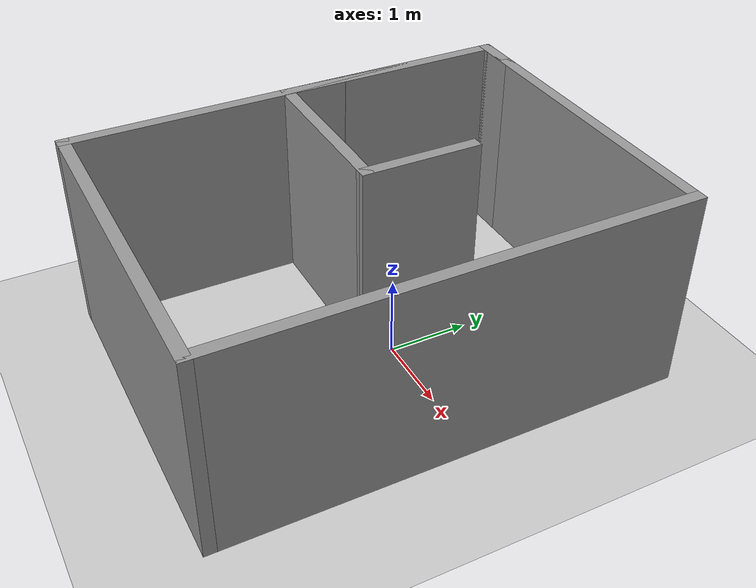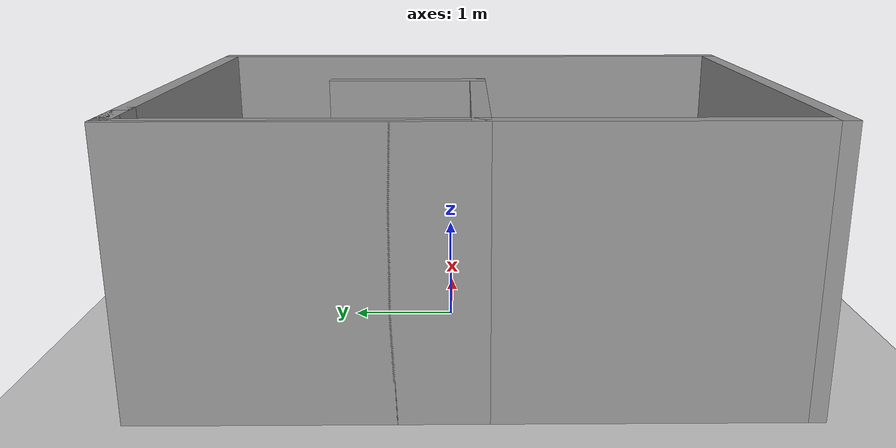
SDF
<sdf version="1.7">
 <world name="default">
  <light name="sun" type="directional">
   <pose>0 0 10 0 -0 0</pose>
   <diffuse>0.8 0.8 0.8 1</diffuse>
   <specular>0.2 0.2 0.2 1</specular>
   <attenuation>
    <range>1000</range>
    <constant>0.9</constant>
    <linear>0.01</linear>
    <quadratic>0.001</quadratic>
   </attenuation>
   <direction>-0.5 0.1 -0.9</direction>
   <spot><inner_angle>0</inner_angle><outer_angle>0</outer_angle><falloff>0</falloff></spot>
  </light>
  <model name="ground_plane">
   <static>1</static>
   <link name="link">
    <collision name="collision">
     <geometry><plane><normal>0 0 1</normal><size>100 100</size></plane></geometry>
     <surface>
      <contact><collide_bitmask>65535</collide_bitmask></contact>
      <friction><ode><mu>100</mu><mu2>50</mu2></ode></friction>
     </surface>
    </collision>
    <visual name="visual">
     <cast_shadows>0</cast_shadows>
     <geometry><plane><normal>0 0 1</normal><size>100 100</size></plane></geometry>
     <material>
      <script><uri>file://media/materials/scripts/gazebo.material</uri><name>Gazebo/Grey</name></script>
     </material>
    </visual>
   </link>
  </model>
  <gravity>0 0 -9.8</gravity>
  <magnetic_field>6e-06 2.3e-05 -4.2e-05</magnetic_field>
  <atmosphere type="adiabatic"/>
  <physics type="ode">
   <max_step_size>0.001</max_step_size>
   <real_time_factor>1</real_time_factor>
   <real_time_update_rate>1000</real_time_update_rate>
  </physics>
  <scene><ambient>0.4 0.4 0.4 1</ambient><background>0.7 0.7 0.7 1</background><shadows>1</shadows></scene>
  <spherical_coordinates>
   <surface_model>EARTH_WGS84</surface_model>
   <latitude_deg>0</latitude_deg>
   <longitude_deg>0</longitude_deg>
   <elevation>0</elevation>
   <heading_deg>0</heading_deg>
  </spherical_coordinates>
  <model name="maze_4">
   <pose>-0.210045 -0.221276 0 0 -0 0</pose>
   <link name="Wall_10">
    <collision name="Wall_10_Collision">
     <geometry><box><size>0.65 0.15 2.5</size></box></geometry>
     <pose>0 0 1.25 0 -0 0</pose>
    </collision>
    <visual name="Wall_10_Visual">
     <pose>0 0 1.25 0 -0 0</pose>
     <geometry><box><size>0.65 0.15 2.5</size></box></geometry>
     <material>
      <script><uri>file://media/materials/scripts/gazebo.material</uri><name>Gazebo/Grey</name></script>
      <ambient>1 1 1 1</ambient>
     </material>
     <meta><layer>0</layer></meta>
    </visual>
    <pose>-1.8 2.8 0 0 -0 3.14159</pose>
   </link>
   <link name="Wall_11">
    <collision name="Wall_11_Collision">
     <geometry><box><size>3 0.15 2.5</size></box></geometry>
     <pose>0 0 1.25 0 -0 0</pose>
    </collision>
    <visual name="Wall_11_Visual">
     <pose>0 0 1.25 0 -0 0</pose>
     <geometry><box><size>3 0.15 2.5</size></box></geometry>
     <material>
      <script><uri>file://media/materials/scripts/gazebo.material</uri><name>Gazebo/Grey</name></script>
      <ambient>1 1 1 1</ambient>
     </material>
     <meta><layer>0</layer></meta>
    </visual>
    <pose>-2.05 1.375 0 0 -0 -1.5708</pose>
   </link>
   <link name="Wall_12">
    <collision name="Wall_12_Collision">
     <geometry><box><size>2.25 0.15 2.5</size></box></geometry>
     <pose>0 0 1.25 0 -0 0</pose>
    </collision>
    <visual name="Wall_12_Visual">
     <pose>0 0 1.25 0 -0 0</pose>
     <geometry><box><size>2.25 0.15 2.5</size></box></geometry>
     <material>
      <script><uri>file://media/materials/scripts/gazebo.material</uri><name>Gazebo/Grey</name></script>
      <ambient>1 1 1 1</ambient>
     </material>
     <meta><layer>0</layer></meta>
    </visual>
    <pose>-1 -0.05 0 0 -0 0</pose>
   </link>
   <link name="Wall_13">
    <collision name="Wall_13_Collision">
     <geometry><box><size>1.5 0.15 2.5</size></box></geometry>
     <pose>0 0 1.25 0 -0 0</pose>
    </collision>
    <visual name="Wall_13_Visual">
     <pose>0 0 1.25 0 -0 0</pose>
     <geometry><box><size>1.5 0.15 2.5</size></box></geometry>
     <material>
      <script><uri>file://media/materials/scripts/gazebo.material</uri><name>Gazebo/Grey</name></script>
      <ambient>1 1 1 1</ambient>
     </material>
     <meta><layer>0</layer></meta>
    </visual>
    <pose>0.05 0.625 0 0 -0 1.5708</pose>
   </link>
   <link name="Wall_5">
    <collision name="Wall_5_Collision">
     <geometry><box><size>3.75 0.15 2.5</size></box></geometry>
     <pose>0 0 1.25 0 -0 0</pose>
    </collision>
    <visual name="Wall_5_Visual">
     <pose>0 0 1.25 0 -0 0</pose>
     <geometry><box><size>3.75 0.15 2.5</size></box></geometry>
     <material>
      <script><uri>file://media/materials/scripts/gazebo.material</uri><name>Gazebo/Grey</name></script>
      <ambient>1 1 1 1</ambient>
     </material>
     <meta><layer>0</layer></meta>
    </visual>
    <pose>0.25 2.8 0 0 -0 0</pose>
   </link>
   <link name="Wall_6">
    <collision name="Wall_6_Collision">
     <geometry><box><size>5.75 0.15 2.5</size></box></geometry>
     <pose>0 0 1.25 0 -0 0</pose>
    </collision>
    <visual name="Wall_6_Visual">
     <pose>0 0 1.25 0 -0 0</pose>
     <geometry><box><size>5.75 0.15 2.5</size></box></geometry>
     <material>
      <script><uri>file://media/materials/scripts/gazebo.material</uri><name>Gazebo/Grey</name></script>
      <ambient>1 1 1 1</ambient>
     </material>
     <meta><layer>0</layer></meta>
    </visual>
    <pose>2.05 0 0 0 -0 -1.5708</pose>
   </link>
   <link name="Wall_7">
    <collision name="Wall_7_Collision">
     <geometry><box><size>4.25 0.15 2.5</size></box></geometry>
     <pose>0 0 1.25 0 -0 0</pose>
    </collision>
    <visual name="Wall_7_Visual">
     <pose>0 0 1.25 0 -0 0</pose>
     <geometry><box><size>4.25 0.15 2.5</size></box></geometry>
     <material>
      <script><uri>file://media/materials/scripts/gazebo.material</uri><name>Gazebo/Grey</name></script>
      <ambient>1 1 1 1</ambient>
     </material>
     <meta><layer>0</layer></meta>
    </visual>
    <pose>-0 -2.8 0 0 -0 3.14159</pose>
   </link>
   <link name="Wall_8">
    <collision name="Wall_8_Collision">
     <geometry><box><size>5.75 0.15 2.5</size></box></geometry>
     <pose>0 0 1.25 0 -0 0</pose>
    </collision>
    <visual name="Wall_8_Visual">
     <pose>0 0 1.25 0 -0 0</pose>
     <geometry><box><size>5.75 0.15 2.5</size></box></geometry>
     <material>
      <script><uri>file://media/materials/scripts/gazebo.material</uri><name>Gazebo/Grey</name></script>
      <ambient>1 1 1 1</ambient>
     </material>
     <meta><layer>0</layer></meta>
    </visual>
    <pose>-2.05 0 0 0 -0 1.5708</pose>
   </link>
   <link name="Wall_9">
    <collision name="Wall_9_Collision">
     <geometry><box><size>0.65 0.15 2.5</size></box></geometry>
     <pose>0 0 1.25 0 -0 0</pose>
    </collision>
    <visual name="Wall_9_Visual">
     <pose>0 0 1.25 0 -0 0</pose>
     <geometry><box><size>0.65 0.15 2.5</size></box></geometry>
     <material>
      <script><uri>file://media/materials/scripts/gazebo.material</uri><name>Gazebo/Grey</name></script>
      <ambient>1 1 1 1</ambient>
     </material>
     <meta><layer>0</layer></meta>
    </visual>
    <pose>-1.8 2.8 0 0 -0 0</pose>
   </link>
   <static>1</static>
  </model>
  <model name="box_link_2">
   <link name="Wall">
    <pose>0 0 0.1985 0 -0 0</pose>
    <inertial>
     <mass>5</mass>
     <inertia><ixx>0.3089</ixx><iyy>0.1022</iyy><izz>0.2797</izz><ixy>0</ixy><ixz>0</ixz><iyz>0</iyz></inertia>
    </inertial>
    <collision name="Wall_Collision"><geometry><box><size>0.296 0.764 0.397</size></box></geometry></collision>
    <visual name="Wall_Visual">
     <geometry><box><size>0.296 0.764 0.397</size></box></geometry>
     <material>
      <script><uri>file://media/materials/scripts/gazebo.material</uri><name>Gazebo/Grey</name></script>
      <ambient>1 1 1 1</ambient>
     </material>
    </visual>
   </link>
   <static>1</static>
   <pose>0.3 0 0 0 -0 0</pose>
  </model>
 </world>
</sdf>
